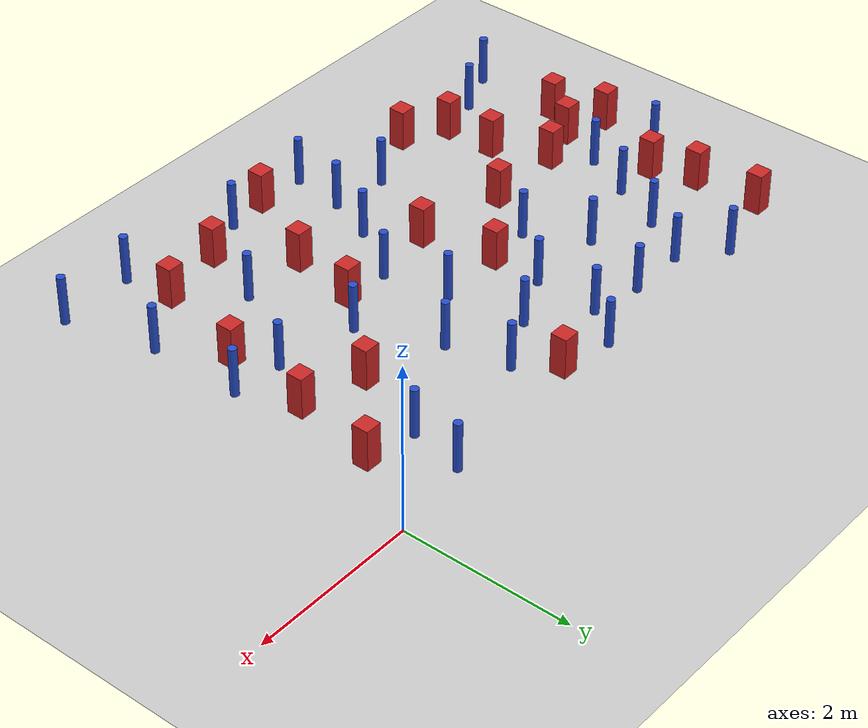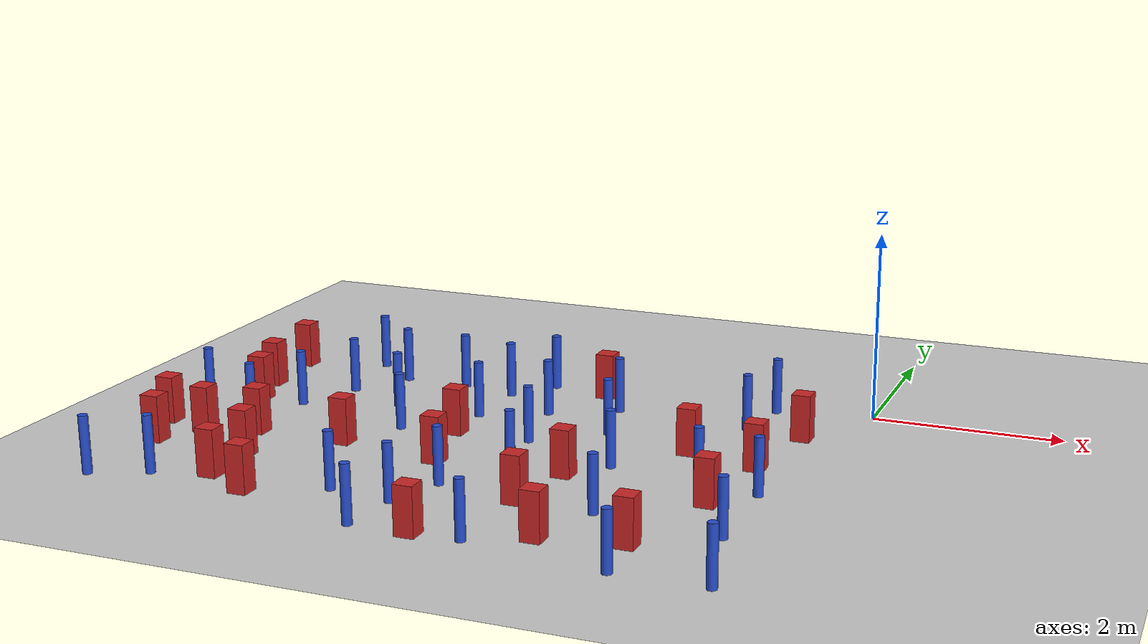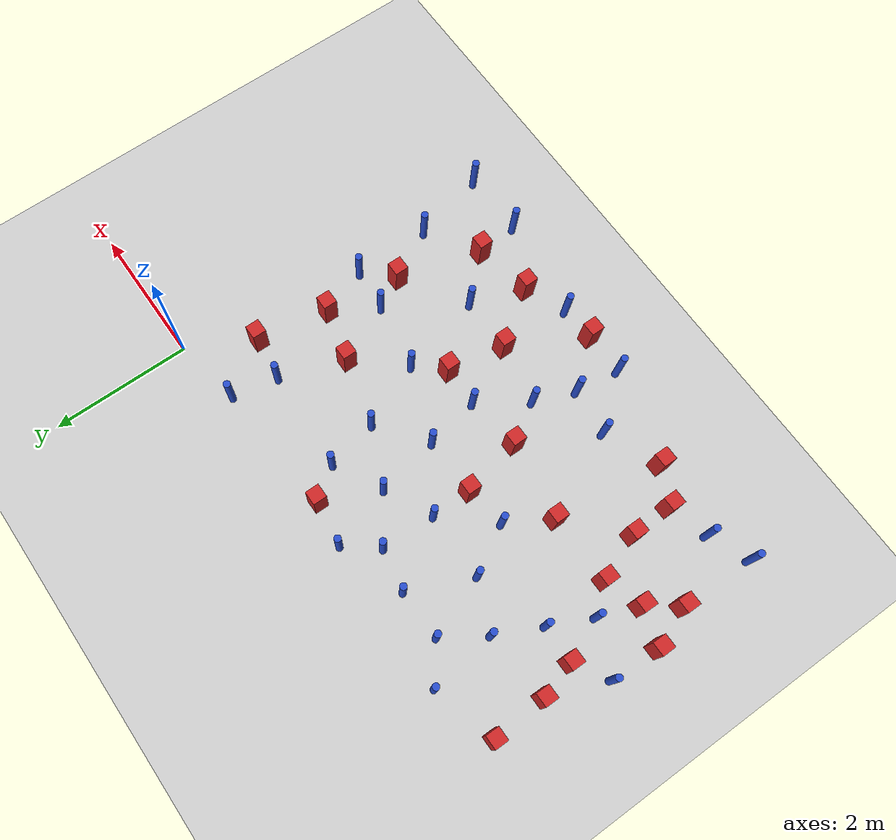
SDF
<sdf version="1.6">
 <world name="default">
  <model name="ground_plane">
   <static>1</static>
   <link name="link">
    <collision name="collision">
     <geometry><plane><normal>0 0 1</normal><size>100 100</size></plane></geometry>
     <surface><friction><ode><mu>100</mu><mu2>50</mu2></ode></friction></surface>
    </collision>
    <visual name="visual">
     <cast_shadows>0</cast_shadows>
     <geometry><plane><normal>0 0 1</normal><size>100 100</size></plane></geometry>
     <material>
      <ambient>1.0 1.0 1.0 1.0</ambient>
      <diffuse>0.8 0.8 0.8 1.0</diffuse>
      <specular>0.01 0.01 0.01 1.000000</specular>
     </material>
    </visual>
   </link>
  </model>
  <model name="square_post_obstacle3">
   <static>true</static>
   <pose>-5.62151948386 -3.42446716188 8.22691968438e-08 7.2212513382e-06 -7.54495500217e-07 2.29674213826e-05</pose>
   <link name="link">
    <pose>0 0 0.25 0 -0 0</pose>
    <inertial>
     <mass>100</mass>
     <inertia>
      <ixx>0.166667</ixx>
      <ixy>0</ixy>
      <ixz>0</ixz>
      <iyy>0.166667</iyy>
      <iyz>0</iyz>
      <izz>0.166667</izz>
     </inertia>
    </inertial>
    <collision name="collision"><geometry><box><size>.2 .2 .5</size></box></geometry></collision>
    <visual name="visual">
     <geometry><box><size>.2 .2 .5</size></box></geometry>
     <material>
      <script><name>Gazebo/Red</name><uri>file://media/materials/scripts/gazebo.material</uri></script>
     </material>
    </visual>
   </link>
  </model>
  <model name="pole_obstacle7">
   <static>true</static>
   <pose>-3.41852707502 -3.4730363077 2.88873142074e-08 -9.90536690232e-09 4.6021994898e-07 -1.20965994968e-07</pose>
   <link name="link">
    <pose>0 0 0.3 0 -0 0</pose>
    <inertial>
     <mass>1</mass>
     <inertia><ixx>0.145833</ixx><ixy>0</ixy><ixz>0</ixz><iyy>0.145833</iyy><iyz>0</iyz><izz>0.125</izz></inertia>
    </inertial>
    <collision name="collision">
     <geometry><cylinder><radius>0.05</radius><length>.6</length></cylinder></geometry>
    </collision>
    <visual name="visual">
     <geometry><cylinder><radius>0.05</radius><length>.6</length></cylinder></geometry>
     <material>
      <script><name>Gazebo/Blue</name><uri>file://media/materials/scripts/gazebo.material</uri></script>
     </material>
    </visual>
   </link>
  </model>
  <model name="square_post_obstacle5">
   <static>true</static>
   <pose>-6.39773132126 -2.92644080052 8.22691968438e-08 7.2212513382e-06 -7.54495500217e-07 2.29674213826e-05</pose>
   <link name="link">
    <pose>0 0 0.25 0 -0 0</pose>
    <inertial>
     <mass>100</mass>
     <inertia>
      <ixx>0.166667</ixx>
      <ixy>0</ixy>
      <ixz>0</ixz>
      <iyy>0.166667</iyy>
      <iyz>0</iyz>
      <izz>0.166667</izz>
     </inertia>
    </inertial>
    <collision name="collision"><geometry><box><size>.2 .2 .5</size></box></geometry></collision>
    <visual name="visual">
     <geometry><box><size>.2 .2 .5</size></box></geometry>
     <material>
      <script><name>Gazebo/Red</name><uri>file://media/materials/scripts/gazebo.material</uri></script>
     </material>
    </visual>
   </link>
  </model>
  <model name="pole_obstacle12">
   <static>true</static>
   <pose>-4.53100883687 -0.543912162179 2.88873142074e-08 -9.90536689968e-09 4.60219948986e-07 -1.20965994963e-07</pose>
   <link name="link">
    <pose>0 0 0.3 0 -0 0</pose>
    <inertial>
     <mass>1</mass>
     <inertia><ixx>0.145833</ixx><ixy>0</ixy><ixz>0</ixz><iyy>0.145833</iyy><iyz>0</iyz><izz>0.125</izz></inertia>
    </inertial>
    <collision name="collision">
     <geometry><cylinder><radius>0.05</radius><length>.6</length></cylinder></geometry>
    </collision>
    <visual name="visual">
     <geometry><cylinder><radius>0.05</radius><length>.6</length></cylinder></geometry>
     <material>
      <script><name>Gazebo/Blue</name><uri>file://media/materials/scripts/gazebo.material</uri></script>
     </material>
    </visual>
   </link>
  </model>
  <model name="square_post_obstacle8">
   <static>true</static>
   <pose>-5.08560462656 -4.32271295964 8.22691968438e-08 7.2212513382e-06 -7.54495500217e-07 2.29674213826e-05</pose>
   <link name="link">
    <pose>0 0 0.25 0 -0 0</pose>
    <inertial>
     <mass>100</mass>
     <inertia>
      <ixx>0.166667</ixx>
      <ixy>0</ixy>
      <ixz>0</ixz>
      <iyy>0.166667</iyy>
      <iyz>0</iyz>
      <izz>0.166667</izz>
     </inertia>
    </inertial>
    <collision name="collision"><geometry><box><size>.2 .2 .5</size></box></geometry></collision>
    <visual name="visual">
     <geometry><box><size>.2 .2 .5</size></box></geometry>
     <material>
      <script><name>Gazebo/Red</name><uri>file://media/materials/scripts/gazebo.material</uri></script>
     </material>
    </visual>
   </link>
  </model>
  <model name="pole_obstacle15">
   <static>true</static>
   <pose>-1.13466148341 -4.8690241705 2.88873142074e-08 -9.90536689852e-09 4.60219948989e-07 -1.2096599496e-07</pose>
   <link name="link">
    <pose>0 0 0.3 0 -0 0</pose>
    <inertial>
     <mass>1</mass>
     <inertia><ixx>0.145833</ixx><ixy>0</ixy><ixz>0</ixz><iyy>0.145833</iyy><iyz>0</iyz><izz>0.125</izz></inertia>
    </inertial>
    <collision name="collision">
     <geometry><cylinder><radius>0.05</radius><length>.6</length></cylinder></geometry>
    </collision>
    <visual name="visual">
     <geometry><cylinder><radius>0.05</radius><length>.6</length></cylinder></geometry>
     <material>
      <script><name>Gazebo/Blue</name><uri>file://media/materials/scripts/gazebo.material</uri></script>
     </material>
    </visual>
   </link>
  </model>
  <model name="pole_obstacle21">
   <static>true</static>
   <pose>-5.73954983882 -0.171041019509 2.88873142074e-08 -9.90536689223e-09 4.60219949004e-07 -1.20965994952e-07</pose>
   <link name="link">
    <pose>0 0 0.3 0 -0 0</pose>
    <inertial>
     <mass>1</mass>
     <inertia><ixx>0.145833</ixx><ixy>0</ixy><ixz>0</ixz><iyy>0.145833</iyy><iyz>0</iyz><izz>0.125</izz></inertia>
    </inertial>
    <collision name="collision">
     <geometry><cylinder><radius>0.05</radius><length>.6</length></cylinder></geometry>
    </collision>
    <visual name="visual">
     <geometry><cylinder><radius>0.05</radius><length>.6</length></cylinder></geometry>
     <material>
      <script><name>Gazebo/Blue</name><uri>file://media/materials/scripts/gazebo.material</uri></script>
     </material>
    </visual>
   </link>
  </model>
  <model name="pole_obstacle24">
   <static>true</static>
   <pose>-2.44266408327 -1.49710090465 2.88873142074e-08 -9.90536689395e-09 4.60219949e-07 -1.20965994953e-07</pose>
   <link name="link">
    <pose>0 0 0.3 0 -0 0</pose>
    <inertial>
     <mass>1</mass>
     <inertia><ixx>0.145833</ixx><ixy>0</ixy><ixz>0</ixz><iyy>0.145833</iyy><iyz>0</iyz><izz>0.125</izz></inertia>
    </inertial>
    <collision name="collision">
     <geometry><cylinder><radius>0.05</radius><length>.6</length></cylinder></geometry>
    </collision>
    <visual name="visual">
     <geometry><cylinder><radius>0.05</radius><length>.6</length></cylinder></geometry>
     <material>
      <script><name>Gazebo/Blue</name><uri>file://media/materials/scripts/gazebo.material</uri></script>
     </material>
    </visual>
   </link>
  </model>
  <model name="pole_obstacle33">
   <static>true</static>
   <pose>-4.31789861332 -3.97679642273 2.88873142074e-08 -9.90536690067e-09 4.60219948984e-07 -1.20965994963e-07</pose>
   <link name="link">
    <pose>0 0 0.3 0 -0 0</pose>
    <inertial>
     <mass>1</mass>
     <inertia><ixx>0.145833</ixx><ixy>0</ixy><ixz>0</ixz><iyy>0.145833</iyy><iyz>0</iyz><izz>0.125</izz></inertia>
    </inertial>
    <collision name="collision">
     <geometry><cylinder><radius>0.05</radius><length>.6</length></cylinder></geometry>
    </collision>
    <visual name="visual">
     <geometry><cylinder><radius>0.05</radius><length>.6</length></cylinder></geometry>
     <material>
      <script><name>Gazebo/Blue</name><uri>file://media/materials/scripts/gazebo.material</uri></script>
     </material>
    </visual>
   </link>
  </model>
  <model name="pole_obstacle41">
   <static>true</static>
   <pose>-3.72948637926 -4.70537019713 2.88873142074e-08 -9.90536692062e-09 4.60219948937e-07 -1.20965994985e-07</pose>
   <link name="link">
    <pose>0 0 0.3 0 -0 0</pose>
    <inertial>
     <mass>1</mass>
     <inertia><ixx>0.145833</ixx><ixy>0</ixy><ixz>0</ixz><iyy>0.145833</iyy><iyz>0</iyz><izz>0.125</izz></inertia>
    </inertial>
    <collision name="collision">
     <geometry><cylinder><radius>0.05</radius><length>.6</length></cylinder></geometry>
    </collision>
    <visual name="visual">
     <geometry><cylinder><radius>0.05</radius><length>.6</length></cylinder></geometry>
     <material>
      <script><name>Gazebo/Blue</name><uri>file://media/materials/scripts/gazebo.material</uri></script>
     </material>
    </visual>
   </link>
  </model>
  <model name="square_post_obstacle31">
   <static>true</static>
   <pose>-3.74982277612 -2.90105760583 8.22691968438e-08 7.2212513382e-06 -7.54495500217e-07 2.29674213826e-05</pose>
   <link name="link">
    <pose>0 0 0.25 0 -0 0</pose>
    <inertial>
     <mass>100</mass>
     <inertia>
      <ixx>0.166667</ixx>
      <ixy>0</ixy>
      <ixz>0</ixz>
      <iyy>0.166667</iyy>
      <iyz>0</iyz>
      <izz>0.166667</izz>
     </inertia>
    </inertial>
    <collision name="collision"><geometry><box><size>.2 .2 .5</size></box></geometry></collision>
    <visual name="visual">
     <geometry><box><size>.2 .2 .5</size></box></geometry>
     <material>
      <script><name>Gazebo/Red</name><uri>file://media/materials/scripts/gazebo.material</uri></script>
     </material>
    </visual>
   </link>
  </model>
  <model name="pole_obstacle48">
   <static>true</static>
   <pose>-3.64391117641 -4.05829273582 2.88873142074e-08 -9.90536692062e-09 4.60219948937e-07 -1.20965994985e-07</pose>
   <link name="link">
    <pose>0 0 0.3 0 -0 0</pose>
    <inertial>
     <mass>1</mass>
     <inertia><ixx>0.145833</ixx><ixy>0</ixy><ixz>0</ixz><iyy>0.145833</iyy><iyz>0</iyz><izz>0.125</izz></inertia>
    </inertial>
    <collision name="collision">
     <geometry><cylinder><radius>0.05</radius><length>.6</length></cylinder></geometry>
    </collision>
    <visual name="visual">
     <geometry><cylinder><radius>0.05</radius><length>.6</length></cylinder></geometry>
     <material>
      <script><name>Gazebo/Blue</name><uri>file://media/materials/scripts/gazebo.material</uri></script>
     </material>
    </visual>
   </link>
  </model>
  <model name="square_post_obstacle40">
   <static>true</static>
   <pose>-3.93727877947 -2.02855434134 8.22691968438e-08 7.22125133819e-06 -7.54495500217e-07 2.29674213826e-05</pose>
   <link name="link">
    <pose>0 0 0.25 0 -0 0</pose>
    <inertial>
     <mass>100</mass>
     <inertia>
      <ixx>0.166667</ixx>
      <ixy>0</ixy>
      <ixz>0</ixz>
      <iyy>0.166667</iyy>
      <iyz>0</iyz>
      <izz>0.166667</izz>
     </inertia>
    </inertial>
    <collision name="collision"><geometry><box><size>.2 .2 .5</size></box></geometry></collision>
    <visual name="visual">
     <geometry><box><size>.2 .2 .5</size></box></geometry>
     <material>
      <script><name>Gazebo/Red</name><uri>file://media/materials/scripts/gazebo.material</uri></script>
     </material>
    </visual>
   </link>
  </model>
  <model name="pole_obstacle62">
   <static>true</static>
   <pose>-0.46089415602 -3.77523346475 2.88873142074e-08 -9.90536689335e-09 4.60219949001e-07 -1.20965994953e-07</pose>
   <link name="link">
    <pose>0 0 0.3 0 -0 0</pose>
    <inertial>
     <mass>1</mass>
     <inertia><ixx>0.145833</ixx><ixy>0</ixy><ixz>0</ixz><iyy>0.145833</iyy><iyz>0</iyz><izz>0.125</izz></inertia>
    </inertial>
    <collision name="collision">
     <geometry><cylinder><radius>0.05</radius><length>.6</length></cylinder></geometry>
    </collision>
    <visual name="visual">
     <geometry><cylinder><radius>0.05</radius><length>.6</length></cylinder></geometry>
     <material>
      <script><name>Gazebo/Blue</name><uri>file://media/materials/scripts/gazebo.material</uri></script>
     </material>
    </visual>
   </link>
  </model>
  <model name="square_post_obstacle48">
   <static>true</static>
   <pose>-0.713020430787 -1.95122688747 8.22691968438e-08 7.2212513382e-06 -7.54495500217e-07 2.29674213826e-05</pose>
   <link name="link">
    <pose>0 0 0.25 0 -0 0</pose>
    <inertial>
     <mass>100</mass>
     <inertia>
      <ixx>0.166667</ixx>
      <ixy>0</ixy>
      <ixz>0</ixz>
      <iyy>0.166667</iyy>
      <iyz>0</iyz>
      <izz>0.166667</izz>
     </inertia>
    </inertial>
    <collision name="collision"><geometry><box><size>.2 .2 .5</size></box></geometry></collision>
    <visual name="visual">
     <geometry><box><size>.2 .2 .5</size></box></geometry>
     <material>
      <script><name>Gazebo/Red</name><uri>file://media/materials/scripts/gazebo.material</uri></script>
     </material>
    </visual>
   </link>
  </model>
  <model name="pole_obstacle69">
   <static>true</static>
   <pose>-2.97321188863 -2.7907937998 2.88873142074e-08 -9.90536690232e-09 4.6021994898e-07 -1.20965994968e-07</pose>
   <link name="link">
    <pose>0 0 0.3 0 -0 0</pose>
    <inertial>
     <mass>1</mass>
     <inertia><ixx>0.145833</ixx><ixy>0</ixy><ixz>0</ixz><iyy>0.145833</iyy><iyz>0</iyz><izz>0.125</izz></inertia>
    </inertial>
    <collision name="collision">
     <geometry><cylinder><radius>0.05</radius><length>.6</length></cylinder></geometry>
    </collision>
    <visual name="visual">
     <geometry><cylinder><radius>0.05</radius><length>.6</length></cylinder></geometry>
     <material>
      <script><name>Gazebo/Blue</name><uri>file://media/materials/scripts/gazebo.material</uri></script>
     </material>
    </visual>
   </link>
  </model>
  <model name="square_post_obstacle59">
   <static>true</static>
   <pose>-4.87973213529 -2.72526055039 8.22691968438e-08 7.2212513382e-06 -7.54495500217e-07 2.29674213826e-05</pose>
   <link name="link">
    <pose>0 0 0.25 0 -0 0</pose>
    <inertial>
     <mass>100</mass>
     <inertia>
      <ixx>0.166667</ixx>
      <ixy>0</ixy>
      <ixz>0</ixz>
      <iyy>0.166667</iyy>
      <iyz>0</iyz>
      <izz>0.166667</izz>
     </inertia>
    </inertial>
    <collision name="collision"><geometry><box><size>.2 .2 .5</size></box></geometry></collision>
    <visual name="visual">
     <geometry><box><size>.2 .2 .5</size></box></geometry>
     <material>
      <script><name>Gazebo/Red</name><uri>file://media/materials/scripts/gazebo.material</uri></script>
     </material>
    </visual>
   </link>
  </model>
  <model name="pole_obstacle83">
   <static>true</static>
   <pose>-2.05502962933 -2.42200761447 2.88873142074e-08 -9.90536690232e-09 4.6021994898e-07 -1.20965994968e-07</pose>
   <link name="link">
    <pose>0 0 0.3 0 -0 0</pose>
    <inertial>
     <mass>1</mass>
     <inertia><ixx>0.145833</ixx><ixy>0</ixy><ixz>0</ixz><iyy>0.145833</iyy><iyz>0</iyz><izz>0.125</izz></inertia>
    </inertial>
    <collision name="collision">
     <geometry><cylinder><radius>0.05</radius><length>.6</length></cylinder></geometry>
    </collision>
    <visual name="visual">
     <geometry><cylinder><radius>0.05</radius><length>.6</length></cylinder></geometry>
     <material>
      <script><name>Gazebo/Blue</name><uri>file://media/materials/scripts/gazebo.material</uri></script>
     </material>
    </visual>
   </link>
  </model>
  <model name="pole_obstacle87">
   <static>true</static>
   <pose>-6.91185226584 -2.0430143815 2.88873142074e-08 -9.90536689749e-09 4.60219948991e-07 -1.20965994959e-07</pose>
   <link name="link">
    <pose>0 0 0.3 0 -0 0</pose>
    <inertial>
     <mass>1</mass>
     <inertia><ixx>0.145833</ixx><ixy>0</ixy><ixz>0</ixz><iyy>0.145833</iyy><iyz>0</iyz><izz>0.125</izz></inertia>
    </inertial>
    <collision name="collision">
     <geometry><cylinder><radius>0.05</radius><length>.6</length></cylinder></geometry>
    </collision>
    <visual name="visual">
     <geometry><cylinder><radius>0.05</radius><length>.6</length></cylinder></geometry>
     <material>
      <script><name>Gazebo/Blue</name><uri>file://media/materials/scripts/gazebo.material</uri></script>
     </material>
    </visual>
   </link>
  </model>
  <model name="pole_obstacle88">
   <static>true</static>
   <pose>-3.11762162456 -2.01457720898 2.88873142074e-08 -9.9053668955e-09 4.60219948996e-07 -1.20965994957e-07</pose>
   <link name="link">
    <pose>0 0 0.3 0 -0 0</pose>
    <inertial>
     <mass>1</mass>
     <inertia><ixx>0.145833</ixx><ixy>0</ixy><ixz>0</ixz><iyy>0.145833</iyy><iyz>0</iyz><izz>0.125</izz></inertia>
    </inertial>
    <collision name="collision">
     <geometry><cylinder><radius>0.05</radius><length>.6</length></cylinder></geometry>
    </collision>
    <visual name="visual">
     <geometry><cylinder><radius>0.05</radius><length>.6</length></cylinder></geometry>
     <material>
      <script><name>Gazebo/Blue</name><uri>file://media/materials/scripts/gazebo.material</uri></script>
     </material>
    </visual>
   </link>
  </model>
  <model name="square_post_obstacle80">
   <static>true</static>
   <pose>-6.63618020955 -0.430434469977 8.22691968438e-08 7.2212513382e-06 -7.54495500217e-07 2.29674213826e-05</pose>
   <link name="link">
    <pose>0 0 0.25 0 -0 0</pose>
    <inertial>
     <mass>100</mass>
     <inertia>
      <ixx>0.166667</ixx>
      <ixy>0</ixy>
      <ixz>0</ixz>
      <iyy>0.166667</iyy>
      <iyz>0</iyz>
      <izz>0.166667</izz>
     </inertia>
    </inertial>
    <collision name="collision"><geometry><box><size>.2 .2 .5</size></box></geometry></collision>
    <visual name="visual">
     <geometry><box><size>.2 .2 .5</size></box></geometry>
     <material>
      <script><name>Gazebo/Red</name><uri>file://media/materials/scripts/gazebo.material</uri></script>
     </material>
    </visual>
   </link>
  </model>
  <model name="square_post_obstacle82">
   <static>true</static>
   <pose>-0.85192468702 -3.04601461273 8.22691968438e-08 7.2212513382e-06 -7.54495500217e-07 2.29674213826e-05</pose>
   <link name="link">
    <pose>0 0 0.25 0 -0 0</pose>
    <inertial>
     <mass>100</mass>
     <inertia>
      <ixx>0.166667</ixx>
      <ixy>0</ixy>
      <ixz>0</ixz>
      <iyy>0.166667</iyy>
      <iyz>0</iyz>
      <izz>0.166667</izz>
     </inertia>
    </inertial>
    <collision name="collision"><geometry><box><size>.2 .2 .5</size></box></geometry></collision>
    <visual name="visual">
     <geometry><box><size>.2 .2 .5</size></box></geometry>
     <material>
      <script><name>Gazebo/Red</name><uri>file://media/materials/scripts/gazebo.material</uri></script>
     </material>
    </visual>
   </link>
  </model>
  <model name="pole_obstacle92">
   <static>true</static>
   <pose>-1.14945839002 -0.828227237306 2.88873142074e-08 -9.90536689692e-09 4.60219948993e-07 -1.20965994958e-07</pose>
   <link name="link">
    <pose>0 0 0.3 0 -0 0</pose>
    <inertial>
     <mass>1</mass>
     <inertia><ixx>0.145833</ixx><ixy>0</ixy><ixz>0</ixz><iyy>0.145833</iyy><iyz>0</iyz><izz>0.125</izz></inertia>
    </inertial>
    <collision name="collision">
     <geometry><cylinder><radius>0.05</radius><length>.6</length></cylinder></geometry>
    </collision>
    <visual name="visual">
     <geometry><cylinder><radius>0.05</radius><length>.6</length></cylinder></geometry>
     <material>
      <script><name>Gazebo/Blue</name><uri>file://media/materials/scripts/gazebo.material</uri></script>
     </material>
    </visual>
   </link>
  </model>
  <model name="pole_obstacle94">
   <static>true</static>
   <pose>-3.28111921723 -1.11206537343 2.88873142074e-08 -9.90536691123e-09 4.60219948959e-07 -1.20965994982e-07</pose>
   <link name="link">
    <pose>0 0 0.3 0 -0 0</pose>
    <inertial>
     <mass>1</mass>
     <inertia><ixx>0.145833</ixx><ixy>0</ixy><ixz>0</ixz><iyy>0.145833</iyy><iyz>0</iyz><izz>0.125</izz></inertia>
    </inertial>
    <collision name="collision">
     <geometry><cylinder><radius>0.05</radius><length>.6</length></cylinder></geometry>
    </collision>
    <visual name="visual">
     <geometry><cylinder><radius>0.05</radius><length>.6</length></cylinder></geometry>
     <material>
      <script><name>Gazebo/Blue</name><uri>file://media/materials/scripts/gazebo.material</uri></script>
     </material>
    </visual>
   </link>
  </model>
  <model name="pole_obstacle100">
   <static>true</static>
   <pose>-1.75262891013 -3.64687253307 2.88873142074e-08 -9.90536689791e-09 4.6021994899e-07 -1.20965994959e-07</pose>
   <link name="link">
    <pose>0 0 0.3 0 -0 0</pose>
    <inertial>
     <mass>1</mass>
     <inertia><ixx>0.145833</ixx><ixy>0</ixy><ixz>0</ixz><iyy>0.145833</iyy><iyz>0</iyz><izz>0.125</izz></inertia>
    </inertial>
    <collision name="collision">
     <geometry><cylinder><radius>0.05</radius><length>.6</length></cylinder></geometry>
    </collision>
    <visual name="visual">
     <geometry><cylinder><radius>0.05</radius><length>.6</length></cylinder></geometry>
     <material>
      <script><name>Gazebo/Blue</name><uri>file://media/materials/scripts/gazebo.material</uri></script>
     </material>
    </visual>
   </link>
  </model>
  <model name="square_post_obstacle96">
   <static>true</static>
   <pose>-6.70568925468 -3.36044822884 8.22691968438e-08 7.2212513382e-06 -7.54495500217e-07 2.29674213826e-05</pose>
   <link name="link">
    <pose>0 0 0.25 0 -0 0</pose>
    <inertial>
     <mass>100</mass>
     <inertia>
      <ixx>0.166667</ixx>
      <ixy>0</ixy>
      <ixz>0</ixz>
      <iyy>0.166667</iyy>
      <iyz>0</iyz>
      <izz>0.166667</izz>
     </inertia>
    </inertial>
    <collision name="collision"><geometry><box><size>.2 .2 .5</size></box></geometry></collision>
    <visual name="visual">
     <geometry><box><size>.2 .2 .5</size></box></geometry>
     <material>
      <script><name>Gazebo/Red</name><uri>file://media/materials/scripts/gazebo.material</uri></script>
     </material>
    </visual>
   </link>
  </model>
  <model name="pole_obstacle102">
   <static>true</static>
   <pose>-5.91360014168 -1.77117643382 2.88873142074e-08 -9.90536689445e-09 4.60219948999e-07 -1.20965994956e-07</pose>
   <link name="link">
    <pose>0 0 0.3 0 -0 0</pose>
    <inertial>
     <mass>1</mass>
     <inertia><ixx>0.145833</ixx><ixy>0</ixy><ixz>0</ixz><iyy>0.145833</iyy><iyz>0</iyz><izz>0.125</izz></inertia>
    </inertial>
    <collision name="collision">
     <geometry><cylinder><radius>0.05</radius><length>.6</length></cylinder></geometry>
    </collision>
    <visual name="visual">
     <geometry><cylinder><radius>0.05</radius><length>.6</length></cylinder></geometry>
     <material>
      <script><name>Gazebo/Blue</name><uri>file://media/materials/scripts/gazebo.material</uri></script>
     </material>
    </visual>
   </link>
  </model>
  <model name="pole_obstacle104">
   <static>true</static>
   <pose>-5.2433984241 -0.55566554218 2.88873142074e-08 -9.90536689837e-09 4.60219948989e-07 -1.2096599496e-07</pose>
   <link name="link">
    <pose>0 0 0.3 0 -0 0</pose>
    <inertial>
     <mass>1</mass>
     <inertia><ixx>0.145833</ixx><ixy>0</ixy><ixz>0</ixz><iyy>0.145833</iyy><iyz>0</iyz><izz>0.125</izz></inertia>
    </inertial>
    <collision name="collision">
     <geometry><cylinder><radius>0.05</radius><length>.6</length></cylinder></geometry>
    </collision>
    <visual name="visual">
     <geometry><cylinder><radius>0.05</radius><length>.6</length></cylinder></geometry>
     <material>
      <script><name>Gazebo/Blue</name><uri>file://media/materials/scripts/gazebo.material</uri></script>
     </material>
    </visual>
   </link>
  </model>
  <model name="square_post_obstacle100">
   <static>true</static>
   <pose>-6.59123109929 -1.22245526351 8.22691968438e-08 7.2212513382e-06 -7.54495500217e-07 2.29674213826e-05</pose>
   <link name="link">
    <pose>0 0 0.25 0 -0 0</pose>
    <inertial>
     <mass>100</mass>
     <inertia>
      <ixx>0.166667</ixx>
      <ixy>0</ixy>
      <ixz>0</ixz>
      <iyy>0.166667</iyy>
      <iyz>0</iyz>
      <izz>0.166667</izz>
     </inertia>
    </inertial>
    <collision name="collision"><geometry><box><size>.2 .2 .5</size></box></geometry></collision>
    <visual name="visual">
     <geometry><box><size>.2 .2 .5</size></box></geometry>
     <material>
      <script><name>Gazebo/Red</name><uri>file://media/materials/scripts/gazebo.material</uri></script>
     </material>
    </visual>
   </link>
  </model>
  <model name="pole_obstacle108">
   <static>true</static>
   <pose>-3.94626045692 -1.441342143 2.88873142074e-08 -9.90536689395e-09 4.60219949e-07 -1.20965994953e-07</pose>
   <link name="link">
    <pose>0 0 0.3 0 -0 0</pose>
    <inertial>
     <mass>1</mass>
     <inertia><ixx>0.145833</ixx><ixy>0</ixy><ixz>0</ixz><iyy>0.145833</iyy><iyz>0</iyz><izz>0.125</izz></inertia>
    </inertial>
    <collision name="collision">
     <geometry><cylinder><radius>0.05</radius><length>.6</length></cylinder></geometry>
    </collision>
    <visual name="visual">
     <geometry><cylinder><radius>0.05</radius><length>.6</length></cylinder></geometry>
     <material>
      <script><name>Gazebo/Blue</name><uri>file://media/materials/scripts/gazebo.material</uri></script>
     </material>
    </visual>
   </link>
  </model>
  <model name="pole_obstacle112">
   <static>true</static>
   <pose>-6.18537747087 -4.21202005224 2.88873142074e-08 -9.90536690842e-09 4.60219948965e-07 -1.20965994976e-07</pose>
   <link name="link">
    <pose>0 0 0.3 0 -0 0</pose>
    <inertial>
     <mass>1</mass>
     <inertia><ixx>0.145833</ixx><ixy>0</ixy><ixz>0</ixz><iyy>0.145833</iyy><iyz>0</iyz><izz>0.125</izz></inertia>
    </inertial>
    <collision name="collision">
     <geometry><cylinder><radius>0.05</radius><length>.6</length></cylinder></geometry>
    </collision>
    <visual name="visual">
     <geometry><cylinder><radius>0.05</radius><length>.6</length></cylinder></geometry>
     <material>
      <script><name>Gazebo/Blue</name><uri>file://media/materials/scripts/gazebo.material</uri></script>
     </material>
    </visual>
   </link>
  </model>
  <model name="pole_obstacle114">
   <static>true</static>
   <pose>-3.56736899841 -0.211621144809 2.88873142074e-08 -9.90536692243e-09 4.60219948932e-07 -1.20965994987e-07</pose>
   <link name="link">
    <pose>0 0 0.3 0 -0 0</pose>
    <inertial>
     <mass>1</mass>
     <inertia><ixx>0.145833</ixx><ixy>0</ixy><ixz>0</ixz><iyy>0.145833</iyy><iyz>0</iyz><izz>0.125</izz></inertia>
    </inertial>
    <collision name="collision">
     <geometry><cylinder><radius>0.05</radius><length>.6</length></cylinder></geometry>
    </collision>
    <visual name="visual">
     <geometry><cylinder><radius>0.05</radius><length>.6</length></cylinder></geometry>
     <material>
      <script><name>Gazebo/Blue</name><uri>file://media/materials/scripts/gazebo.material</uri></script>
     </material>
    </visual>
   </link>
  </model>
  <model name="pole_obstacle122">
   <static>true</static>
   <pose>-0.203389602833 -4.85159131487 2.88873142074e-08 -9.90536689703e-09 4.60219948992e-07 -1.20965994959e-07</pose>
   <link name="link">
    <pose>0 0 0.3 0 -0 0</pose>
    <inertial>
     <mass>1</mass>
     <inertia><ixx>0.145833</ixx><ixy>0</ixy><ixz>0</ixz><iyy>0.145833</iyy><iyz>0</iyz><izz>0.125</izz></inertia>
    </inertial>
    <collision name="collision">
     <geometry><cylinder><radius>0.05</radius><length>.6</length></cylinder></geometry>
    </collision>
    <visual name="visual">
     <geometry><cylinder><radius>0.05</radius><length>.6</length></cylinder></geometry>
     <material>
      <script><name>Gazebo/Blue</name><uri>file://media/materials/scripts/gazebo.material</uri></script>
     </material>
    </visual>
   </link>
  </model>
  <model name="pole_obstacle137">
   <static>true</static>
   <pose>-3.92152806903 -0.658239637566 2.88873142074e-08 -9.90536689285e-09 4.60219949002e-07 -1.20965994953e-07</pose>
   <link name="link">
    <pose>0 0 0.3 0 -0 0</pose>
    <inertial>
     <mass>1</mass>
     <inertia><ixx>0.145833</ixx><ixy>0</ixy><ixz>0</ixz><iyy>0.145833</iyy><iyz>0</iyz><izz>0.125</izz></inertia>
    </inertial>
    <collision name="collision">
     <geometry><cylinder><radius>0.05</radius><length>.6</length></cylinder></geometry>
    </collision>
    <visual name="visual">
     <geometry><cylinder><radius>0.05</radius><length>.6</length></cylinder></geometry>
     <material>
      <script><name>Gazebo/Blue</name><uri>file://media/materials/scripts/gazebo.material</uri></script>
     </material>
    </visual>
   </link>
  </model>
  <model name="pole_obstacle139">
   <static>true</static>
   <pose>-2.60496405974 -4.67630376355 2.88873142074e-08 -9.90536689859e-09 4.60219948989e-07 -1.20965994961e-07</pose>
   <link name="link">
    <pose>0 0 0.3 0 -0 0</pose>
    <inertial>
     <mass>1</mass>
     <inertia><ixx>0.145833</ixx><ixy>0</ixy><ixz>0</ixz><iyy>0.145833</iyy><iyz>0</iyz><izz>0.125</izz></inertia>
    </inertial>
    <collision name="collision">
     <geometry><cylinder><radius>0.05</radius><length>.6</length></cylinder></geometry>
    </collision>
    <visual name="visual">
     <geometry><cylinder><radius>0.05</radius><length>.6</length></cylinder></geometry>
     <material>
      <script><name>Gazebo/Blue</name><uri>file://media/materials/scripts/gazebo.material</uri></script>
     </material>
    </visual>
   </link>
  </model>
  <model name="square_post_obstacle137">
   <static>true</static>
   <pose>-5.87276234343 -2.75248402146 8.22691968438e-08 7.2212513382e-06 -7.54495500217e-07 2.29674213826e-05</pose>
   <link name="link">
    <pose>0 0 0.25 0 -0 0</pose>
    <inertial>
     <mass>100</mass>
     <inertia>
      <ixx>0.166667</ixx>
      <ixy>0</ixy>
      <ixz>0</ixz>
      <iyy>0.166667</iyy>
      <iyz>0</iyz>
      <izz>0.166667</izz>
     </inertia>
    </inertial>
    <collision name="collision"><geometry><box><size>.2 .2 .5</size></box></geometry></collision>
    <visual name="visual">
     <geometry><box><size>.2 .2 .5</size></box></geometry>
     <material>
      <script><name>Gazebo/Red</name><uri>file://media/materials/scripts/gazebo.material</uri></script>
     </material>
    </visual>
   </link>
  </model>
  <model name="square_post_obstacle141">
   <static>true</static>
   <pose>-2.40002500055 -2.80634157419 8.22691968438e-08 7.2212513382e-06 -7.54495500217e-07 2.29674213826e-05</pose>
   <link name="link">
    <pose>0 0 0.25 0 -0 0</pose>
    <inertial>
     <mass>100</mass>
     <inertia>
      <ixx>0.166667</ixx>
      <ixy>0</ixy>
      <ixz>0</ixz>
      <iyy>0.166667</iyy>
      <iyz>0</iyz>
      <izz>0.166667</izz>
     </inertia>
    </inertial>
    <collision name="collision"><geometry><box><size>.2 .2 .5</size></box></geometry></collision>
    <visual name="visual">
     <geometry><box><size>.2 .2 .5</size></box></geometry>
     <material>
      <script><name>Gazebo/Red</name><uri>file://media/materials/scripts/gazebo.material</uri></script>
     </material>
    </visual>
   </link>
  </model>
  <model name="pole_obstacle159">
   <static>true</static>
   <pose>-4.91243819588 -1.4448278747 2.88873142074e-08 -9.90536689445e-09 4.60219948999e-07 -1.20965994956e-07</pose>
   <link name="link">
    <pose>0 0 0.3 0 -0 0</pose>
    <inertial>
     <mass>1</mass>
     <inertia><ixx>0.145833</ixx><ixy>0</ixy><ixz>0</ixz><iyy>0.145833</iyy><iyz>0</iyz><izz>0.125</izz></inertia>
    </inertial>
    <collision name="collision">
     <geometry><cylinder><radius>0.05</radius><length>.6</length></cylinder></geometry>
    </collision>
    <visual name="visual">
     <geometry><cylinder><radius>0.05</radius><length>.6</length></cylinder></geometry>
     <material>
      <script><name>Gazebo/Blue</name><uri>file://media/materials/scripts/gazebo.material</uri></script>
     </material>
    </visual>
   </link>
  </model>
  <model name="square_post_obstacle157">
   <static>true</static>
   <pose>-1.47386654158 -1.75449535849 8.22691968438e-08 7.2212513382e-06 -7.54495500217e-07 2.29674213826e-05</pose>
   <link name="link">
    <pose>0 0 0.25 0 -0 0</pose>
    <inertial>
     <mass>100</mass>
     <inertia>
      <ixx>0.166667</ixx>
      <ixy>0</ixy>
      <ixz>0</ixz>
      <iyy>0.166667</iyy>
      <iyz>0</iyz>
      <izz>0.166667</izz>
     </inertia>
    </inertial>
    <collision name="collision"><geometry><box><size>.2 .2 .5</size></box></geometry></collision>
    <visual name="visual">
     <geometry><box><size>.2 .2 .5</size></box></geometry>
     <material>
      <script><name>Gazebo/Red</name><uri>file://media/materials/scripts/gazebo.material</uri></script>
     </material>
    </visual>
   </link>
  </model>
  <model name="pole_obstacle173">
   <static>true</static>
   <pose>-6.19127424808 -2.36297564644 2.88873142074e-08 -9.90536690245e-09 4.6021994898e-07 -1.20965994966e-07</pose>
   <link name="link">
    <pose>0 0 0.3 0 -0 0</pose>
    <inertial>
     <mass>1</mass>
     <inertia><ixx>0.145833</ixx><ixy>0</ixy><ixz>0</ixz><iyy>0.145833</iyy><iyz>0</iyz><izz>0.125</izz></inertia>
    </inertial>
    <collision name="collision">
     <geometry><cylinder><radius>0.05</radius><length>.6</length></cylinder></geometry>
    </collision>
    <visual name="visual">
     <geometry><cylinder><radius>0.05</radius><length>.6</length></cylinder></geometry>
     <material>
      <script><name>Gazebo/Blue</name><uri>file://media/materials/scripts/gazebo.material</uri></script>
     </material>
    </visual>
   </link>
  </model>
  <model name="square_post_obstacle173">
   <static>true</static>
   <pose>-2.54805681193 -3.6330716105 8.22691968438e-08 7.2212513382e-06 -7.54495500217e-07 2.29674213826e-05</pose>
   <link name="link">
    <pose>0 0 0.25 0 -0 0</pose>
    <inertial>
     <mass>100</mass>
     <inertia>
      <ixx>0.166667</ixx>
      <ixy>0</ixy>
      <ixz>0</ixz>
      <iyy>0.166667</iyy>
      <iyz>0</iyz>
      <izz>0.166667</izz>
     </inertia>
    </inertial>
    <collision name="collision"><geometry><box><size>.2 .2 .5</size></box></geometry></collision>
    <visual name="visual">
     <geometry><box><size>.2 .2 .5</size></box></geometry>
     <material>
      <script><name>Gazebo/Red</name><uri>file://media/materials/scripts/gazebo.material</uri></script>
     </material>
    </visual>
   </link>
  </model>
  <model name="square_post_obstacle175">
   <static>true</static>
   <pose>-6.43988652253 -1.75417870226 8.22691968438e-08 7.2212513382e-06 -7.54495500217e-07 2.29674213826e-05</pose>
   <link name="link">
    <pose>0 0 0.25 0 -0 0</pose>
    <inertial>
     <mass>100</mass>
     <inertia>
      <ixx>0.166667</ixx>
      <ixy>0</ixy>
      <ixz>0</ixz>
      <iyy>0.166667</iyy>
      <iyz>0</iyz>
      <izz>0.166667</izz>
     </inertia>
    </inertial>
    <collision name="collision"><geometry><box><size>.2 .2 .5</size></box></geometry></collision>
    <visual name="visual">
     <geometry><box><size>.2 .2 .5</size></box></geometry>
     <material>
      <script><name>Gazebo/Red</name><uri>file://media/materials/scripts/gazebo.material</uri></script>
     </material>
    </visual>
   </link>
  </model>
  <model name="square_post_obstacle176">
   <static>true</static>
   <pose>-5.60037401747 -4.04322414491 8.22691968438e-08 7.2212513382e-06 -7.54495500217e-07 2.29674213826e-05</pose>
   <link name="link">
    <pose>0 0 0.25 0 -0 0</pose>
    <inertial>
     <mass>100</mass>
     <inertia>
      <ixx>0.166667</ixx>
      <ixy>0</ixy>
      <ixz>0</ixz>
      <iyy>0.166667</iyy>
      <iyz>0</iyz>
      <izz>0.166667</izz>
     </inertia>
    </inertial>
    <collision name="collision"><geometry><box><size>.2 .2 .5</size></box></geometry></collision>
    <visual name="visual">
     <geometry><box><size>.2 .2 .5</size></box></geometry>
     <material>
      <script><name>Gazebo/Red</name><uri>file://media/materials/scripts/gazebo.material</uri></script>
     </material>
    </visual>
   </link>
  </model>
  <model name="square_post_obstacle178">
   <static>true</static>
   <pose>-1.19206815334 -4.24818511168 8.22691968438e-08 7.2212513382e-06 -7.54495500217e-07 2.29674213826e-05</pose>
   <link name="link">
    <pose>0 0 0.25 0 -0 0</pose>
    <inertial>
     <mass>100</mass>
     <inertia>
      <ixx>0.166667</ixx>
      <ixy>0</ixy>
      <ixz>0</ixz>
      <iyy>0.166667</iyy>
      <iyz>0</iyz>
      <izz>0.166667</izz>
     </inertia>
    </inertial>
    <collision name="collision"><geometry><box><size>.2 .2 .5</size></box></geometry></collision>
    <visual name="visual">
     <geometry><box><size>.2 .2 .5</size></box></geometry>
     <material>
      <script><name>Gazebo/Red</name><uri>file://media/materials/scripts/gazebo.material</uri></script>
     </material>
    </visual>
   </link>
  </model>
  <model name="pole_obstacle180">
   <static>true</static>
   <pose>-2.60378969302 -0.750410893443 2.88873142074e-08 -9.90536689285e-09 4.60219949002e-07 -1.20965994953e-07</pose>
   <link name="link">
    <pose>0 0 0.3 0 -0 0</pose>
    <inertial>
     <mass>1</mass>
     <inertia><ixx>0.145833</ixx><ixy>0</ixy><ixz>0</ixz><iyy>0.145833</iyy><iyz>0</iyz><izz>0.125</izz></inertia>
    </inertial>
    <collision name="collision">
     <geometry><cylinder><radius>0.05</radius><length>.6</length></cylinder></geometry>
    </collision>
    <visual name="visual">
     <geometry><cylinder><radius>0.05</radius><length>.6</length></cylinder></geometry>
     <material>
      <script><name>Gazebo/Blue</name><uri>file://media/materials/scripts/gazebo.material</uri></script>
     </material>
    </visual>
   </link>
  </model>
  <model name="square_post_obstacle187">
   <static>true</static>
   <pose>-6.93154724127 -2.76462753957 8.22691968438e-08 7.2212513382e-06 -7.54495500217e-07 2.29674213826e-05</pose>
   <link name="link">
    <pose>0 0 0.25 0 -0 0</pose>
    <inertial>
     <mass>100</mass>
     <inertia>
      <ixx>0.166667</ixx>
      <ixy>0</ixy>
      <ixz>0</ixz>
      <iyy>0.166667</iyy>
      <iyz>0</iyz>
      <izz>0.166667</izz>
     </inertia>
    </inertial>
    <collision name="collision"><geometry><box><size>.2 .2 .5</size></box></geometry></collision>
    <visual name="visual">
     <geometry><box><size>.2 .2 .5</size></box></geometry>
     <material>
      <script><name>Gazebo/Red</name><uri>file://media/materials/scripts/gazebo.material</uri></script>
     </material>
    </visual>
   </link>
  </model>
  <model name="square_post_obstacle193">
   <static>true</static>
   <pose>-0.527240440114 -0.921180146801 8.22691968438e-08 7.2212513382e-06 -7.54495500217e-07 2.29674213826e-05</pose>
   <link name="link">
    <pose>0 0 0.25 0 -0 0</pose>
    <inertial>
     <mass>100</mass>
     <inertia>
      <ixx>0.166667</ixx>
      <ixy>0</ixy>
      <ixz>0</ixz>
      <iyy>0.166667</iyy>
      <iyz>0</iyz>
      <izz>0.166667</izz>
     </inertia>
    </inertial>
    <collision name="collision"><geometry><box><size>.2 .2 .5</size></box></geometry></collision>
    <visual name="visual">
     <geometry><box><size>.2 .2 .5</size></box></geometry>
     <material>
      <script><name>Gazebo/Red</name><uri>file://media/materials/scripts/gazebo.material</uri></script>
     </material>
    </visual>
   </link>
  </model>
  <model name="square_post_obstacle194">
   <static>true</static>
   <pose>-2.91349443154 -0.31356372924 8.22691968438e-08 7.2212513382e-06 -7.54495500217e-07 2.29674213826e-05</pose>
   <link name="link">
    <pose>0 0 0.25 0 -0 0</pose>
    <inertial>
     <mass>100</mass>
     <inertia>
      <ixx>0.166667</ixx>
      <ixy>0</ixy>
      <ixz>0</ixz>
      <iyy>0.166667</iyy>
      <iyz>0</iyz>
      <izz>0.166667</izz>
     </inertia>
    </inertial>
    <collision name="collision"><geometry><box><size>.2 .2 .5</size></box></geometry></collision>
    <visual name="visual">
     <geometry><box><size>.2 .2 .5</size></box></geometry>
     <material>
      <script><name>Gazebo/Red</name><uri>file://media/materials/scripts/gazebo.material</uri></script>
     </material>
    </visual>
   </link>
  </model>
  <model name="square_post_obstacle196">
   <static>true</static>
   <pose>-2.01190436455 -4.41046420109 8.22691968438e-08 7.22125133819e-06 -7.54495500217e-07 2.29674213826e-05</pose>
   <link name="link">
    <pose>0 0 0.25 0 -0 0</pose>
    <inertial>
     <mass>100</mass>
     <inertia>
      <ixx>0.166667</ixx>
      <ixy>0</ixy>
      <ixz>0</ixz>
      <iyy>0.166667</iyy>
      <iyz>0</iyz>
      <izz>0.166667</izz>
     </inertia>
    </inertial>
    <collision name="collision"><geometry><box><size>.2 .2 .5</size></box></geometry></collision>
    <visual name="visual">
     <geometry><box><size>.2 .2 .5</size></box></geometry>
     <material>
      <script><name>Gazebo/Red</name><uri>file://media/materials/scripts/gazebo.material</uri></script>
     </material>
    </visual>
   </link>
  </model>
  <model name="square_post_obstacle197">
   <static>true</static>
   <pose>-3.10554280918 -4.70633076306 8.22691968438e-08 7.22125133819e-06 -7.54495500217e-07 2.29674213826e-05</pose>
   <link name="link">
    <pose>0 0 0.25 0 -0 0</pose>
    <inertial>
     <mass>100</mass>
     <inertia>
      <ixx>0.166667</ixx>
      <ixy>0</ixy>
      <ixz>0</ixz>
      <iyy>0.166667</iyy>
      <iyz>0</iyz>
      <izz>0.166667</izz>
     </inertia>
    </inertial>
    <collision name="collision"><geometry><box><size>.2 .2 .5</size></box></geometry></collision>
    <visual name="visual">
     <geometry><box><size>.2 .2 .5</size></box></geometry>
     <material>
      <script><name>Gazebo/Red</name><uri>file://media/materials/scripts/gazebo.material</uri></script>
     </material>
    </visual>
   </link>
  </model>
  <model name="pole_obstacle197">
   <static>true</static>
   <pose>-6.75014408234 -4.45337885709 2.88873142074e-08 -9.90536690842e-09 4.60219948965e-07 -1.20965994976e-07</pose>
   <link name="link">
    <pose>0 0 0.3 0 -0 0</pose>
    <inertial>
     <mass>1</mass>
     <inertia><ixx>0.145833</ixx><ixy>0</ixy><ixz>0</ixz><iyy>0.145833</iyy><iyz>0</iyz><izz>0.125</izz></inertia>
    </inertial>
    <collision name="collision">
     <geometry><cylinder><radius>0.05</radius><length>.6</length></cylinder></geometry>
    </collision>
    <visual name="visual">
     <geometry><cylinder><radius>0.05</radius><length>.6</length></cylinder></geometry>
     <material>
      <script><name>Gazebo/Blue</name><uri>file://media/materials/scripts/gazebo.material</uri></script>
     </material>
    </visual>
   </link>
  </model>
  <model name="pole_obstacle203">
   <static>true</static>
   <pose>-1.02068688313 -0.16972337288 2.88873142074e-08 -9.90536689999e-09 4.60219948985e-07 -1.20965994963e-07</pose>
   <link name="link">
    <pose>0 0 0.3 0 -0 0</pose>
    <inertial>
     <mass>1</mass>
     <inertia><ixx>0.145833</ixx><ixy>0</ixy><ixz>0</ixz><iyy>0.145833</iyy><iyz>0</iyz><izz>0.125</izz></inertia>
    </inertial>
    <collision name="collision">
     <geometry><cylinder><radius>0.05</radius><length>.6</length></cylinder></geometry>
    </collision>
    <visual name="visual">
     <geometry><cylinder><radius>0.05</radius><length>.6</length></cylinder></geometry>
     <material>
      <script><name>Gazebo/Blue</name><uri>file://media/materials/scripts/gazebo.material</uri></script>
     </material>
    </visual>
   </link>
  </model>
  <model name="pole_obstacle207">
   <static>true</static>
   <pose>-4.53449662235 -2.11233254298 2.88873142074e-08 -9.90536690245e-09 4.6021994898e-07 -1.20965994966e-07</pose>
   <link name="link">
    <pose>0 0 0.3 0 -0 0</pose>
    <inertial>
     <mass>1</mass>
     <inertia><ixx>0.145833</ixx><ixy>0</ixy><ixz>0</ixz><iyy>0.145833</iyy><iyz>0</iyz><izz>0.125</izz></inertia>
    </inertial>
    <collision name="collision">
     <geometry><cylinder><radius>0.05</radius><length>.6</length></cylinder></geometry>
    </collision>
    <visual name="visual">
     <geometry><cylinder><radius>0.05</radius><length>.6</length></cylinder></geometry>
     <material>
      <script><name>Gazebo/Blue</name><uri>file://media/materials/scripts/gazebo.material</uri></script>
     </material>
    </visual>
   </link>
  </model>
  <model name="pole_obstacle210">
   <static>true</static>
   <pose>-0.471682587508 -2.6494953472 2.88873142074e-08 -9.90536689335e-09 4.60219949001e-07 -1.20965994953e-07</pose>
   <link name="link">
    <pose>0 0 0.3 0 -0 0</pose>
    <inertial>
     <mass>1</mass>
     <inertia><ixx>0.145833</ixx><ixy>0</ixy><ixz>0</ixz><iyy>0.145833</iyy><iyz>0</iyz><izz>0.125</izz></inertia>
    </inertial>
    <collision name="collision">
     <geometry><cylinder><radius>0.05</radius><length>.6</length></cylinder></geometry>
    </collision>
    <visual name="visual">
     <geometry><cylinder><radius>0.05</radius><length>.6</length></cylinder></geometry>
     <material>
      <script><name>Gazebo/Blue</name><uri>file://media/materials/scripts/gazebo.material</uri></script>
     </material>
    </visual>
   </link>
  </model>
  <model name="pole_obstacle214">
   <static>true</static>
   <pose>-5.61421999087 -1.13247997959 2.88873142074e-08 -9.90536689408e-09 4.60219948999e-07 -1.20965994956e-07</pose>
   <link name="link">
    <pose>0 0 0.3 0 -0 0</pose>
    <inertial>
     <mass>1</mass>
     <inertia><ixx>0.145833</ixx><ixy>0</ixy><ixz>0</ixz><iyy>0.145833</iyy><iyz>0</iyz><izz>0.125</izz></inertia>
    </inertial>
    <collision name="collision">
     <geometry><cylinder><radius>0.05</radius><length>.6</length></cylinder></geometry>
    </collision>
    <visual name="visual">
     <geometry><cylinder><radius>0.05</radius><length>.6</length></cylinder></geometry>
     <material>
      <script><name>Gazebo/Blue</name><uri>file://media/materials/scripts/gazebo.material</uri></script>
     </material>
    </visual>
   </link>
  </model>
  <model name="pole_obstacle228">
   <static>true</static>
   <pose>-1.08627999087 -2.59352997959 2.88873142074e-08 -9.90536692039e-09 4.60219948937e-07 -1.20965994983e-07</pose>
   <link name="link">
    <pose>0 0 0.3 0 -0 0</pose>
    <inertial>
     <mass>1</mass>
     <inertia><ixx>0.145833</ixx><ixy>0</ixy><ixz>0</ixz><iyy>0.145833</iyy><iyz>0</iyz><izz>0.125</izz></inertia>
    </inertial>
    <collision name="collision">
     <geometry><cylinder><radius>0.05</radius><length>.6</length></cylinder></geometry>
    </collision>
    <visual name="visual">
     <geometry><cylinder><radius>0.05</radius><length>.6</length></cylinder></geometry>
     <material>
      <script><name>Gazebo/Blue</name><uri>file://media/materials/scripts/gazebo.material</uri></script>
     </material>
    </visual>
   </link>
  </model>
 </world>
</sdf>
